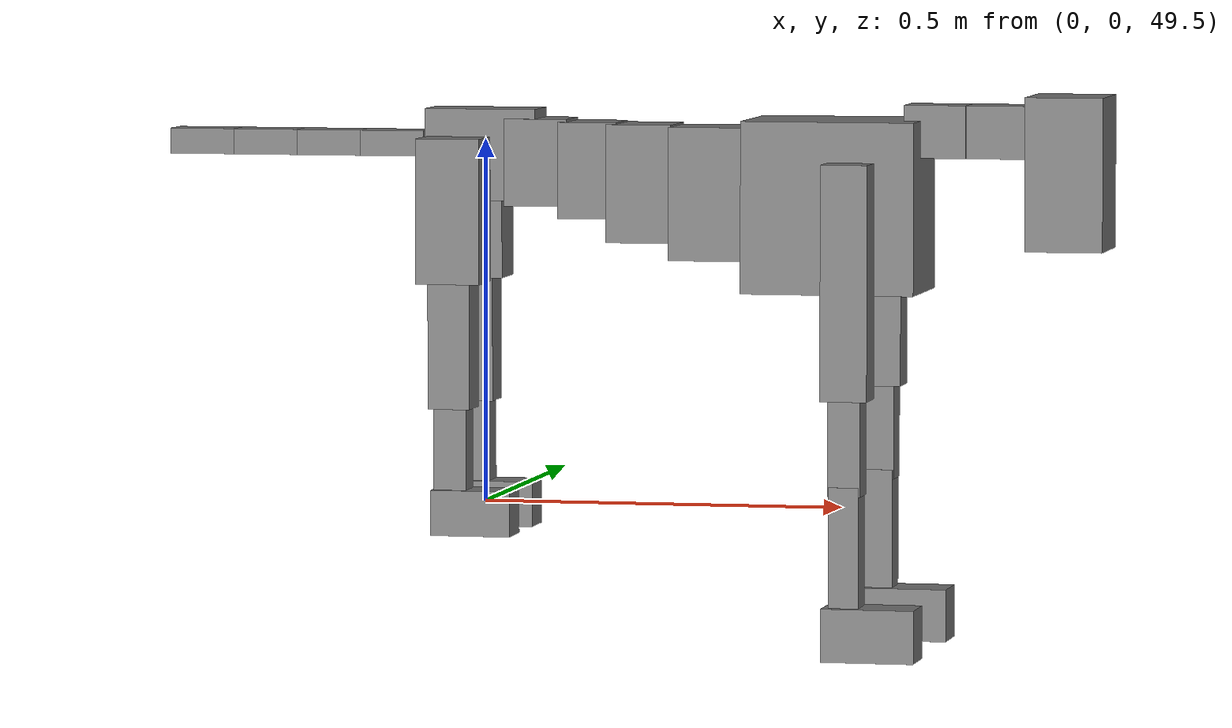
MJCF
<mujoco model="dog">

    <default>
        <joint armature="0.02" stiffness="1" damping="0.2" limited="true"/>
        <geom condim="3" friction="1 0.05 0.05" margin="0.01"/>
        <motor ctrllimited="true" ctrlrange="-1.0 1.0" forcelimited="true" gear="50"/>
    </default>

    <compiler inertiafromgeom="true" angle="radian"/>

    <option timestep="0.016" iterations="50" tolerance="1e-10" solver="Newton" jacobian="dense" cone="pyramidal"/>

    <size nconmax="20000" njmax="60000" nstack="5000000"/>
    <visual>
        <map force="0.1" zfar="30"/>
        <rgba haze="0.15 0.25 0.35 1"/>
        <quality shadowsize="2048"/>
        <global offwidth="800" offheight="800"/>
    </visual>

    <asset>
        <texture type="skybox" builtin="gradient" rgb1="0.3 0.5 0.7" rgb2="0 0 0" width="512" height="512"/>
        <texture name="texplane" type="2d" builtin="checker" rgb1=".2 .3 .4" rgb2=".1 0.15 0.2" width="512" height="512"
                 mark="cross" markrgb=".8 .8 .8"/>
        <texture name="texgeom" type="cube" builtin="flat" mark="cross" width="127" height="1278" rgb1="0.8 0.6 0.4"
                 rgb2="0.8 0.6 0.4" markrgb="1 1 1" random="0.01"/>

        <material name="matplane" reflectance="0.3" texture="texplane" texrepeat="1 1" texuniform="true"/>
        <material name="matgeom" texture="texgeom" texuniform="true" rgba="0.8 0.6 .4 1"/>
    </asset>

    <worldbody>
        <geom name="floor" pos="0 0 0" size="0 0 .25" type="plane" material="matplane" condim="3"/>

        <light directional="false" diffuse=".2 .2 .2" specular="0 0 0" pos="0 0 5" dir="0 0 -1" castshadow="false"/>
        <light mode="targetbodycom" target="torso" directional="false" diffuse=".8 .8 .8" specular="0.3 0.3 0.3"
               pos="0 0 4.0" dir="0 0 -1"/>

        <body name="root" pos="0 0 50">
            <freejoint name="root_1"/>
            <geom type="box" pos="0 0 -0.02" size="0.0774  0.0358  0.063" density="2030"/>

            <body name="spine1" pos="0.054 0 0">
                <joint name="spine1_y" axis="0 1 0" range="0 0.7" limited="true"/>
                <geom type="box" pos="0.02375 0 -0.03" size="0.04375  0.0375  0.05985" density="2030"/>

                <body name="spine2" pos="0.0612 0 0">
                    <joint name="spine2_y" axis="0 1 0" range="-0.15 0.15" limited="true"/>
                    <geom type="box" pos="0.03555  0  -0.04" size="0.04055  0.039  0.06615" density="2030"/>

                    <body name="spine3" pos="0.0730 0 0">
                        <joint name="spine3_y" axis="0 1 0" range="-0.15 0.15" limited="true"/>
                        <geom type="box" pos="0.03555  0  -0.057" size="0.04555  0.0445  0.081" density="2030"/>

                        <body name="spine4" pos="0.0780 0 0">
                            <joint name="spine4_y" axis="0 1 0" range="-0.15 0.15" limited="true"/>
                            <geom type="box" pos="0.05265  0  -0.07" size="0.05265  0.045  0.09135" density="2030"/>

                            <body name="torso" pos="0.1082 0 0">
                                <joint name="torso_y" axis="0 1 0" range="-0.15 0.15" limited="true"/>
                                <geom type="box" pos="0.11925  0  -0.085" size="0.11925  0.085  0.11745"
                                      density="2030"/>

                                <body name="neck1" pos="0.2160  0   0.0180">
                                    <joint name="neck1_y" axis="0 1 0" range="-1.2  -1" limited="true"/>
                                    <geom type="box" pos="0.0423  0  0" size="0.0423  0.03  0.036" density="2325"/>

                                    <body name="neck2" pos="0.0853  0  0">
                                        <joint name="neck2_y" axis="0 1 0" range="0.1  0" limited="true"/>
                                        <geom type="box" pos="0.0423  0  0" size="0.0423  0.03  0.036" density="2325"/>

                                        <body name="head" pos="0.0853  0  0">
                                            <joint name="head_y" axis="0 1 0" range="-0.3  -0.2" limited="true"/>
                                            <geom type="box" pos="0.0531  0  -0.055" size="0.0531  0.06  0.1044"
                                                  density="4030"/>

                                        </body>
                                    </body>
                                </body>

                                <body name="front_shoulder" pos="0.156  0   -0.0480">
                                    <joint name="front_shoulder_y" axis="0 1 0" range="-1 1.5" limited="true"/>
                                    <geom type="box" pos="0 0.13 -0.1331" size="0.0320  0.0274  0.1597" density="1158"/>
                                    <geom type="box" pos="0 -0.13 -0.1331" size="0.0320  0.0274  0.1597"
                                          density="1158"/>

                                    <body name="front_elbow" pos="0  0  -0.2661">
                                        <joint name="front_elbow_y" axis="0 1 0" range="-2 0" limited="true"/>
                                        <geom type="box" pos="0 0.13 -0.0780" size="0.0223  0.0228  0.0780"
                                              density="1081"/>
                                        <geom type="box" pos="0 -0.13 -0.0780" size="0.0223  0.0228  0.0780"
                                              density="1081"/>

                                        <body name="front_wrist" pos="0  0  -0.1561">
                                            <joint name="front_wrist_y" axis="0 1 0" range="-0.2 0" limited="true"/>
                                            <geom type="box" pos="0 0.13 -0.0828" size="0.0207  0.0230  0.0960"
                                                  density="1664"/>
                                            <geom type="box" pos="0 -0.13 -0.0828" size="0.0207  0.0230  0.0960"
                                                  density="1664"/>

                                            <body name="front_finger_end" pos="0  0  -0.1656">
                                                <joint name="front_finger_y" axis="0 1 0" range="-0.4 1"
                                                       limited="true"/>
                                                <geom type="box" pos="0.0346  0.13  -0.0212"
                                                      size="0.0635  0.0346  0.0362" density="1515"/>
                                                <geom type="box" pos="0.0346  -0.13  -0.0212"
                                                      size="0.0635  0.0346  0.0362" density="1515"/>

                                            </body>

                                        </body>
                                    </body>
                                </body>

                            </body>
                        </body>
                    </body>
                </body>
            </body>

            <body name="back_hip" pos="-0.03 0 -0.018">
                <joint name="back_hip_y" axis="0 1 0" range="-1.5 0.3" limited="true"/>
                <geom type="box" pos="0 0.07 -0.0768" size="0.0442  0.0347  0.0996" density="1154"/>
                <geom type="box" pos="0 -0.07 -0.0768" size="0.0442  0.0347  0.0996" density="1154"/>

                <body name="back_knee" pos="0  0  -0.1535">
                    <joint name="back_knee_y" axis="0 1 0" range="0 2.8" limited="true"/>
                    <geom type="box" pos="0 0.07 -0.0896" size="0.0291  0.0287  0.1051" density="1227"/>
                    <geom type="box" pos="0 -0.07 -0.0896" size="0.0291  0.0287  0.1051" density="1227"/>

                    <body name="back_ankle" pos="0  0  -0.1792">
                        <joint name="back_ankle_y" axis="0 1 0" range="-2.2 0" limited="true"/>
                        <geom type="box" pos="0 0.07 -0.0710" size="0.0225  0.0225  0.0823" density="1284"/>
                        <geom type="box" pos="0 -0.07 -0.0710" size="0.0225  0.0225  0.0823" density="1284"/>

                        <body name="back_toe_end" pos="0  0  -0.1420">
                            <joint name="back_toe_y" axis="0 1 0" range="-0.4 1" limited="true"/>
                            <geom type="box" pos="0.0302  0.07  -0.0162" size="0.0554  0.0302  0.0312" density="1515"/>
                            <geom type="box" pos="0.0302  -0.07  -0.0162" size="0.0554  0.0302  0.0312" density="1515"/>

                        </body>
                    </body>
                </body>
            </body>

            <body name="tail1" pos="-0.074 0 -0.006">
                <joint name="tail1_y" axis="0 1 0" range="-0.2 0.2" limited="true"/>
                <geom type="box" pos="-0.0536  0  0" size="0.045  0.025  0.0175" density="1587"/>

                <body name="tail2" pos="-0.09 0 0">
                    <joint name="tail2_y" axis="0 1 0" range="-0.2 0.2" limited="true"/>
                    <geom type="box" pos="-0.0536  0  0" size="0.045  0.025  0.0175" density="1587"/>

                    <body name="tail3" pos="-0.09 0 0">
                        <joint name="tail3_y" axis="0 1 0" range="-0.2 0.2" limited="true"/>
                        <geom type="box" pos="-0.0536  0  0" size="0.045  0.025  0.0175" density="1587"/>

                        <body name="tail4" pos="-0.09 0 0">
                            <joint name="tail4_y" axis="0 1 0" range="-0.2 0.2" limited="true"/>
                            <geom type="box" pos="-0.0536  0  0" size="0.045  0.025  0.0175" density="1587"/>

                        </body>
                    </body>
                </body>
            </body>
        </body>
    </worldbody>

    <actuator>
        <motor joint="spine1_y" forcerange="-150 150     "/>
        <motor joint="spine2_y" forcerange="-150 150     "/>
        <motor joint="spine3_y" forcerange="-150 150     "/>
        <motor joint="spine4_y" forcerange="-150 150     "/>
        <motor joint="torso_y" forcerange="-150 150     "/>
        <motor joint="neck1_y" forcerange="-100 100       "/>
        <motor joint="neck2_y" forcerange="-100 100       "/>
        <motor joint="head_y" forcerange="-150 150       "/>
        <motor joint="front_shoulder_y" forcerange="-121.76 160.81"/>
        <motor joint="front_elbow_y" forcerange="-119.22 146.55"/>
        <motor joint="front_wrist_y" forcerange="-116.09 68.30"/>
        <motor joint="front_finger_y" forcerange="-58.29 86.49"/>
        <motor joint="back_hip_y" forcerange="-326.30 336.39"/>
        <motor joint="back_knee_y" forcerange="-225.93 391.46"/>
        <motor joint="back_angle_y" forcerange="-203.57 55.71"/>
        <motor joint="back_toe_y" forcerange="-39.37 122.40"/>
        <motor joint="tail1_y" forcerange="-50 50     "/>
        <motor joint="tail2_y" forcerange="-50 50     "/>
        <motor joint="tail3_y" forcerange="-50 50     "/>
        <motor joint="tail4_y" forcerange="-50 50     "/>
    </actuator>
</mujoco>
